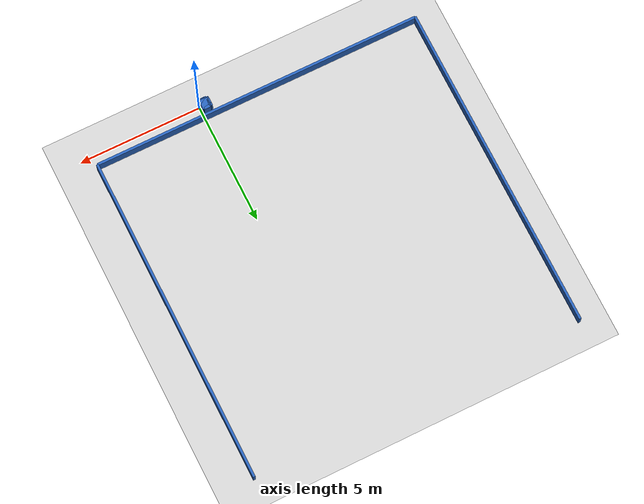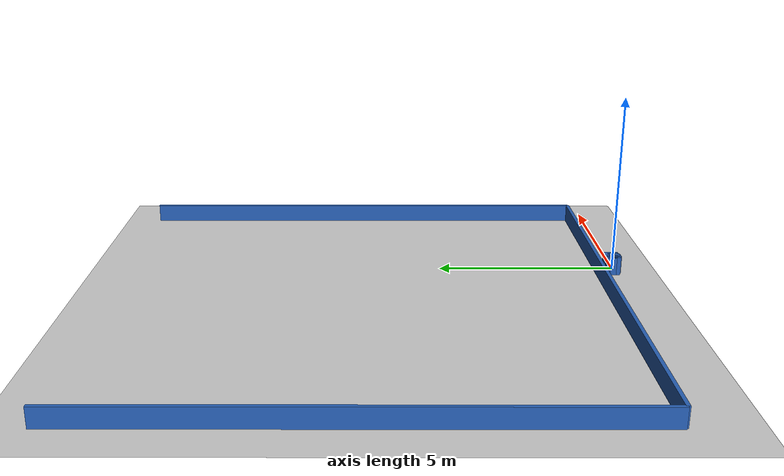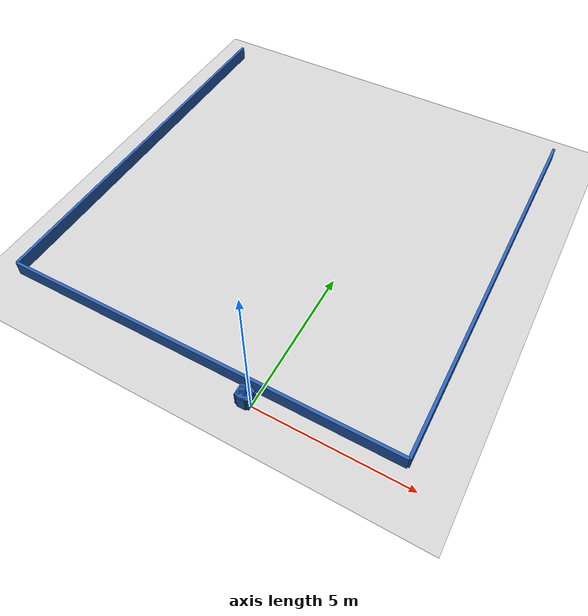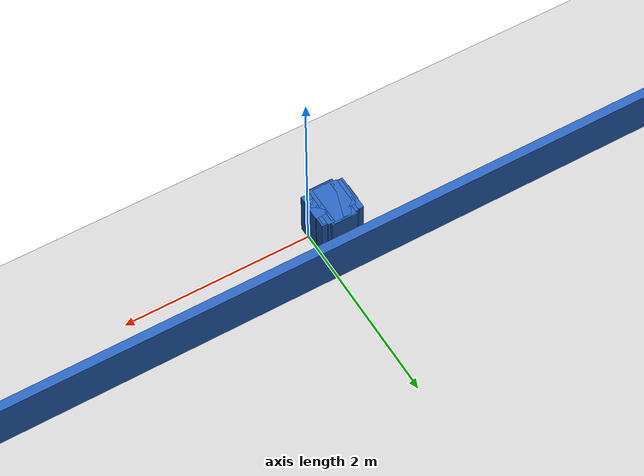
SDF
<?xml version="1.0" ?>
    <sdf version="1.5">
      <world name="default">
        <!-- A global light source -->
        <include>
          <uri>model://sun</uri>
        </include>
        <!-- A ground plane -->
        <include>
          <uri>model://ground_plane</uri>
        </include>

    <model name='libopen_space_final_T2B_55_44'>
      <static>1</static>
      <pose frame=''>-0.225000 0.075000 0.000000 0.000000 0.000000 0.000000</pose>
      <link name='link'>
        <inertial>
          <mass>1</mass>
          <inertia>
            <ixx>0.145833</ixx>
            <ixy>0</ixy>
            <ixz>0</ixz>
            <iyy>0.145833</iyy>
            <iyz>0</iyz>
            <izz>0.125</izz>
          </inertia>
        </inertial>
        <collision name='collision'>
          <geometry>
            <box>
              <size>0.34 0.42 1</size>
            </box>
          </geometry>
          <max_contacts>10</max_contacts>
          <surface>
            <contact>
              <ode/>
            </contact>
            <bounce/>
            <friction>
              <torsional>
                <ode/>
              </torsional>
              <ode/>
            </friction>
          </surface>
        </collision>
        <visual name='visual'>
          <geometry>
            <box>
              <size>0.34 0.42 1</size>
            </box>
          </geometry>
	    <material>
              <ambient>0.152000 0.379000 0.720000 1</ambient>
	      <diffuse>0.152000 0.379000 0.720000 1</diffuse>
          </material>
          <material>
            <script>
              <name>Gazebo/Grey</name>
              <uri>file://media/materials/scripts/gazebo.material</uri>
            </script>
          </material>
        </visual>
        <self_collide>0</self_collide>
        <kinematic>0</kinematic>
        <gravity>1</gravity>
      </link>
      <plugin name='libopen_space_final_T2B_55_44' filename='libopen_space_final_T2B_55_44.so'/>
    </model>

    <model name='libopen_space_final_T2B_140_77'>
      <static>1</static>
      <pose frame=''>-0.225000 0.075000 0.000000 0.000000 0.000000 0.000000</pose>
      <link name='link'>
        <inertial>
          <mass>1</mass>
          <inertia>
            <ixx>0.145833</ixx>
            <ixy>0</ixy>
            <ixz>0</ixz>
            <iyy>0.145833</iyy>
            <iyz>0</iyz>
            <izz>0.125</izz>
          </inertia>
        </inertial>
        <collision name='collision'>
          <geometry>
            <box>
              <size>0.46 0.40 1</size>
            </box>
          </geometry>
          <max_contacts>10</max_contacts>
          <surface>
            <contact>
              <ode/>
            </contact>
            <bounce/>
            <friction>
              <torsional>
                <ode/>
              </torsional>
              <ode/>
            </friction>
          </surface>
        </collision>
        <visual name='visual'>
          <geometry>
            <box>
              <size>0.46 0.40 1</size>
            </box>
          </geometry>
	    <material>
              <ambient>0.152000 0.379000 0.720000 1</ambient>
	      <diffuse>0.152000 0.379000 0.720000 1</diffuse>
          </material>
          <material>
            <script>
              <name>Gazebo/Grey</name>
              <uri>file://media/materials/scripts/gazebo.material</uri>
            </script>
          </material>
        </visual>
        <self_collide>0</self_collide>
        <kinematic>0</kinematic>
        <gravity>1</gravity>
      </link>
      <plugin name='libopen_space_final_T2B_140_77' filename='libopen_space_final_T2B_140_77.so'/>
    </model>

    <model name='libopen_space_final_T2B_112_54'>
      <static>1</static>
      <pose frame=''>-0.225000 0.075000 0.000000 0.000000 0.000000 0.000000</pose>
      <link name='link'>
        <inertial>
          <mass>1</mass>
          <inertia>
            <ixx>0.145833</ixx>
            <ixy>0</ixy>
            <ixz>0</ixz>
            <iyy>0.145833</iyy>
            <iyz>0</iyz>
            <izz>0.125</izz>
          </inertia>
        </inertial>
        <collision name='collision'>
          <geometry>
            <box>
              <size>0.19 0.43 1</size>
            </box>
          </geometry>
          <max_contacts>10</max_contacts>
          <surface>
            <contact>
              <ode/>
            </contact>
            <bounce/>
            <friction>
              <torsional>
                <ode/>
              </torsional>
              <ode/>
            </friction>
          </surface>
        </collision>
        <visual name='visual'>
          <geometry>
            <box>
              <size>0.19 0.43 1</size>
            </box>
          </geometry>
	    <material>
              <ambient>0.152000 0.379000 0.720000 1</ambient>
	      <diffuse>0.152000 0.379000 0.720000 1</diffuse>
          </material>
          <material>
            <script>
              <name>Gazebo/Grey</name>
              <uri>file://media/materials/scripts/gazebo.material</uri>
            </script>
          </material>
        </visual>
        <self_collide>0</self_collide>
        <kinematic>0</kinematic>
        <gravity>1</gravity>
      </link>
      <plugin name='libopen_space_final_T2B_112_54' filename='libopen_space_final_T2B_112_54.so'/>
    </model>

    <model name='libopen_space_final_T2B_85_62'>
      <static>1</static>
      <pose frame=''>-0.225000 0.075000 0.000000 0.000000 0.000000 0.000000</pose>
      <link name='link'>
        <inertial>
          <mass>1</mass>
          <inertia>
            <ixx>0.145833</ixx>
            <ixy>0</ixy>
            <ixz>0</ixz>
            <iyy>0.145833</iyy>
            <iyz>0</iyz>
            <izz>0.125</izz>
          </inertia>
        </inertial>
        <collision name='collision'>
          <geometry>
            <box>
              <size>0.24 0.37 1</size>
            </box>
          </geometry>
          <max_contacts>10</max_contacts>
          <surface>
            <contact>
              <ode/>
            </contact>
            <bounce/>
            <friction>
              <torsional>
                <ode/>
              </torsional>
              <ode/>
            </friction>
          </surface>
        </collision>
        <visual name='visual'>
          <geometry>
            <box>
              <size>0.24 0.37 1</size>
            </box>
          </geometry>
	    <material>
              <ambient>0.152000 0.379000 0.720000 1</ambient>
	      <diffuse>0.152000 0.379000 0.720000 1</diffuse>
          </material>
          <material>
            <script>
              <name>Gazebo/Grey</name>
              <uri>file://media/materials/scripts/gazebo.material</uri>
            </script>
          </material>
        </visual>
        <self_collide>0</self_collide>
        <kinematic>0</kinematic>
        <gravity>1</gravity>
      </link>
      <plugin name='libopen_space_final_T2B_85_62' filename='libopen_space_final_T2B_85_62.so'/>
    </model>

    <model name='libopen_space_final_T2B_112_81'>
      <static>1</static>
      <pose frame=''>-0.225000 0.075000 0.000000 0.000000 0.000000 0.000000</pose>
      <link name='link'>
        <inertial>
          <mass>1</mass>
          <inertia>
            <ixx>0.145833</ixx>
            <ixy>0</ixy>
            <ixz>0</ixz>
            <iyy>0.145833</iyy>
            <iyz>0</iyz>
            <izz>0.125</izz>
          </inertia>
        </inertial>
        <collision name='collision'>
          <geometry>
            <box>
              <size>0.27 0.45 1</size>
            </box>
          </geometry>
          <max_contacts>10</max_contacts>
          <surface>
            <contact>
              <ode/>
            </contact>
            <bounce/>
            <friction>
              <torsional>
                <ode/>
              </torsional>
              <ode/>
            </friction>
          </surface>
        </collision>
        <visual name='visual'>
          <geometry>
            <box>
              <size>0.27 0.45 1</size>
            </box>
          </geometry>
	    <material>
              <ambient>0.152000 0.379000 0.720000 1</ambient>
	      <diffuse>0.152000 0.379000 0.720000 1</diffuse>
          </material>
          <material>
            <script>
              <name>Gazebo/Grey</name>
              <uri>file://media/materials/scripts/gazebo.material</uri>
            </script>
          </material>
        </visual>
        <self_collide>0</self_collide>
        <kinematic>0</kinematic>
        <gravity>1</gravity>
      </link>
      <plugin name='libopen_space_final_T2B_112_81' filename='libopen_space_final_T2B_112_81.so'/>
    </model>

    <model name='libopen_space_final_T2B_103_35'>
      <static>1</static>
      <pose frame=''>-0.225000 0.075000 0.000000 0.000000 0.000000 0.000000</pose>
      <link name='link'>
        <inertial>
          <mass>1</mass>
          <inertia>
            <ixx>0.145833</ixx>
            <ixy>0</ixy>
            <ixz>0</ixz>
            <iyy>0.145833</iyy>
            <iyz>0</iyz>
            <izz>0.125</izz>
          </inertia>
        </inertial>
        <collision name='collision'>
          <geometry>
            <box>
              <size>0.47 0.18 1</size>
            </box>
          </geometry>
          <max_contacts>10</max_contacts>
          <surface>
            <contact>
              <ode/>
            </contact>
            <bounce/>
            <friction>
              <torsional>
                <ode/>
              </torsional>
              <ode/>
            </friction>
          </surface>
        </collision>
        <visual name='visual'>
          <geometry>
            <box>
              <size>0.47 0.18 1</size>
            </box>
          </geometry>
	    <material>
              <ambient>0.152000 0.379000 0.720000 1</ambient>
	      <diffuse>0.152000 0.379000 0.720000 1</diffuse>
          </material>
          <material>
            <script>
              <name>Gazebo/Grey</name>
              <uri>file://media/materials/scripts/gazebo.material</uri>
            </script>
          </material>
        </visual>
        <self_collide>0</self_collide>
        <kinematic>0</kinematic>
        <gravity>1</gravity>
      </link>
      <plugin name='libopen_space_final_T2B_103_35' filename='libopen_space_final_T2B_103_35.so'/>
    </model>

    <model name='libopen_space_final_T2B_118_50'>
      <static>1</static>
      <pose frame=''>-0.225000 0.075000 0.000000 0.000000 0.000000 0.000000</pose>
      <link name='link'>
        <inertial>
          <mass>1</mass>
          <inertia>
            <ixx>0.145833</ixx>
            <ixy>0</ixy>
            <ixz>0</ixz>
            <iyy>0.145833</iyy>
            <iyz>0</iyz>
            <izz>0.125</izz>
          </inertia>
        </inertial>
        <collision name='collision'>
          <geometry>
            <box>
              <size>0.28 0.48 1</size>
            </box>
          </geometry>
          <max_contacts>10</max_contacts>
          <surface>
            <contact>
              <ode/>
            </contact>
            <bounce/>
            <friction>
              <torsional>
                <ode/>
              </torsional>
              <ode/>
            </friction>
          </surface>
        </collision>
        <visual name='visual'>
          <geometry>
            <box>
              <size>0.28 0.48 1</size>
            </box>
          </geometry>
	    <material>
              <ambient>0.152000 0.379000 0.720000 1</ambient>
	      <diffuse>0.152000 0.379000 0.720000 1</diffuse>
          </material>
          <material>
            <script>
              <name>Gazebo/Grey</name>
              <uri>file://media/materials/scripts/gazebo.material</uri>
            </script>
          </material>
        </visual>
        <self_collide>0</self_collide>
        <kinematic>0</kinematic>
        <gravity>1</gravity>
      </link>
      <plugin name='libopen_space_final_T2B_118_50' filename='libopen_space_final_T2B_118_50.so'/>
    </model>

    <model name='libopen_space_final_T2B_51_1'>
      <static>1</static>
      <pose frame=''>-0.225000 0.075000 0.000000 0.000000 0.000000 0.000000</pose>
      <link name='link'>
        <inertial>
          <mass>1</mass>
          <inertia>
            <ixx>0.145833</ixx>
            <ixy>0</ixy>
            <ixz>0</ixz>
            <iyy>0.145833</iyy>
            <iyz>0</iyz>
            <izz>0.125</izz>
          </inertia>
        </inertial>
        <collision name='collision'>
          <geometry>
            <box>
              <size>0.28 0.39 1</size>
            </box>
          </geometry>
          <max_contacts>10</max_contacts>
          <surface>
            <contact>
              <ode/>
            </contact>
            <bounce/>
            <friction>
              <torsional>
                <ode/>
              </torsional>
              <ode/>
            </friction>
          </surface>
        </collision>
        <visual name='visual'>
          <geometry>
            <box>
              <size>0.28 0.39 1</size>
            </box>
          </geometry>
	    <material>
              <ambient>0.152000 0.379000 0.720000 1</ambient>
	      <diffuse>0.152000 0.379000 0.720000 1</diffuse>
          </material>
          <material>
            <script>
              <name>Gazebo/Grey</name>
              <uri>file://media/materials/scripts/gazebo.material</uri>
            </script>
          </material>
        </visual>
        <self_collide>0</self_collide>
        <kinematic>0</kinematic>
        <gravity>1</gravity>
      </link>
      <plugin name='libopen_space_final_T2B_51_1' filename='libopen_space_final_T2B_51_1.so'/>
    </model>

    <model name='libopen_space_final_T2B_115_72'>
      <static>1</static>
      <pose frame=''>-0.225000 0.075000 0.000000 0.000000 0.000000 0.000000</pose>
      <link name='link'>
        <inertial>
          <mass>1</mass>
          <inertia>
            <ixx>0.145833</ixx>
            <ixy>0</ixy>
            <ixz>0</ixz>
            <iyy>0.145833</iyy>
            <iyz>0</iyz>
            <izz>0.125</izz>
          </inertia>
        </inertial>
        <collision name='collision'>
          <geometry>
            <box>
              <size>0.42 0.37 1</size>
            </box>
          </geometry>
          <max_contacts>10</max_contacts>
          <surface>
            <contact>
              <ode/>
            </contact>
            <bounce/>
            <friction>
              <torsional>
                <ode/>
              </torsional>
              <ode/>
            </friction>
          </surface>
        </collision>
        <visual name='visual'>
          <geometry>
            <box>
              <size>0.42 0.37 1</size>
            </box>
          </geometry>
	    <material>
              <ambient>0.152000 0.379000 0.720000 1</ambient>
	      <diffuse>0.152000 0.379000 0.720000 1</diffuse>
          </material>
          <material>
            <script>
              <name>Gazebo/Grey</name>
              <uri>file://media/materials/scripts/gazebo.material</uri>
            </script>
          </material>
        </visual>
        <self_collide>0</self_collide>
        <kinematic>0</kinematic>
        <gravity>1</gravity>
      </link>
      <plugin name='libopen_space_final_T2B_115_72' filename='libopen_space_final_T2B_115_72.so'/>
    </model>

    <model name='libopen_space_final_T2B_134_25'>
      <static>1</static>
      <pose frame=''>-0.225000 0.075000 0.000000 0.000000 0.000000 0.000000</pose>
      <link name='link'>
        <inertial>
          <mass>1</mass>
          <inertia>
            <ixx>0.145833</ixx>
            <ixy>0</ixy>
            <ixz>0</ixz>
            <iyy>0.145833</iyy>
            <iyz>0</iyz>
            <izz>0.125</izz>
          </inertia>
        </inertial>
        <collision name='collision'>
          <geometry>
            <box>
              <size>0.23 0.47 1</size>
            </box>
          </geometry>
          <max_contacts>10</max_contacts>
          <surface>
            <contact>
              <ode/>
            </contact>
            <bounce/>
            <friction>
              <torsional>
                <ode/>
              </torsional>
              <ode/>
            </friction>
          </surface>
        </collision>
        <visual name='visual'>
          <geometry>
            <box>
              <size>0.23 0.47 1</size>
            </box>
          </geometry>
	    <material>
              <ambient>0.152000 0.379000 0.720000 1</ambient>
	      <diffuse>0.152000 0.379000 0.720000 1</diffuse>
          </material>
          <material>
            <script>
              <name>Gazebo/Grey</name>
              <uri>file://media/materials/scripts/gazebo.material</uri>
            </script>
          </material>
        </visual>
        <self_collide>0</self_collide>
        <kinematic>0</kinematic>
        <gravity>1</gravity>
      </link>
      <plugin name='libopen_space_final_T2B_134_25' filename='libopen_space_final_T2B_134_25.so'/>
    </model>

    <model name='libopen_space_final_T2B_116_74'>
      <static>1</static>
      <pose frame=''>-0.225000 0.075000 0.000000 0.000000 0.000000 0.000000</pose>
      <link name='link'>
        <inertial>
          <mass>1</mass>
          <inertia>
            <ixx>0.145833</ixx>
            <ixy>0</ixy>
            <ixz>0</ixz>
            <iyy>0.145833</iyy>
            <iyz>0</iyz>
            <izz>0.125</izz>
          </inertia>
        </inertial>
        <collision name='collision'>
          <geometry>
            <box>
              <size>0.38 0.26 1</size>
            </box>
          </geometry>
          <max_contacts>10</max_contacts>
          <surface>
            <contact>
              <ode/>
            </contact>
            <bounce/>
            <friction>
              <torsional>
                <ode/>
              </torsional>
              <ode/>
            </friction>
          </surface>
        </collision>
        <visual name='visual'>
          <geometry>
            <box>
              <size>0.38 0.26 1</size>
            </box>
          </geometry>
	    <material>
              <ambient>0.152000 0.379000 0.720000 1</ambient>
	      <diffuse>0.152000 0.379000 0.720000 1</diffuse>
          </material>
          <material>
            <script>
              <name>Gazebo/Grey</name>
              <uri>file://media/materials/scripts/gazebo.material</uri>
            </script>
          </material>
        </visual>
        <self_collide>0</self_collide>
        <kinematic>0</kinematic>
        <gravity>1</gravity>
      </link>
      <plugin name='libopen_space_final_T2B_116_74' filename='libopen_space_final_T2B_116_74.so'/>
    </model>

        <model name='bottom_wall'>
          <static>1</static>
          <pose frame=''>-2.25 0.5 0.000000 0.000000 0.000000 1.57079632</pose>
          <link name='link'>
            <inertial>
            <mass>1</mass>
            <inertia>
              <ixx>0.145833</ixx>
              <ixy>0</ixy>
              <ixz>0</ixz>
              <iyy>0.145833</iyy>
              <iyz>0</iyz>
              <izz>0.125</izz>
            </inertia>
            </inertial>
            <collision name='collision'>
            <geometry>
              <box>
              <size>0.1 13.5 1</size>
              </box>
            </geometry>
            <max_contacts>10</max_contacts>
            <surface>
              <contact>
              <ode/>
              </contact>
              <bounce/>
              <friction>
              <torsional>
                <ode/>
              </torsional>
              <ode/>
              </friction>
            </surface>
            </collision>
            <visual name='visual'>
            <geometry>
              <box>
              <size>0.1 13.5 1</size>
              </box>
            </geometry>
            <material>
              <ambient>0.152000 0.379000 0.720000 1</ambient>
            <diffuse>0.152000 0.379000 0.720000 1</diffuse>
            </material>
            <material>
              <script>
              <name>Gazebo/Grey</name>
              <uri>file://media/materials/scripts/gazebo.material</uri>
              </script>
            </material>
            </visual>
            <self_collide>0</self_collide>
            <kinematic>0</kinematic>
            <gravity>1</gravity>
          </link>
        </model>

        <model name='left_wall'>
          <static>1</static>
          <pose frame=''>-9 7.25 0.000000 0.000000 0.000000 0.000000</pose>
          <link name='link'>
            <inertial>
            <mass>1</mass>
            <inertia>
              <ixx>0.145833</ixx>
              <ixy>0</ixy>
              <ixz>0</ixz>
              <iyy>0.145833</iyy>
              <iyz>0</iyz>
              <izz>0.125</izz>
            </inertia>
            </inertial>
            <collision name='collision'>
            <geometry>
              <box>
              <size>0.1 13.5 1</size>
              </box>
            </geometry>
            <max_contacts>10</max_contacts>
            <surface>
              <contact>
              <ode/>
              </contact>
              <bounce/>
              <friction>
              <torsional>
                <ode/>
              </torsional>
              <ode/>
              </friction>
            </surface>
            </collision>
            <visual name='visual'>
            <geometry>
              <box>
              <size>0.1 13.5 1</size>
              </box>
            </geometry>
            <material>
              <ambient>0.152000 0.379000 0.720000 1</ambient>
            <diffuse>0.152000 0.379000 0.720000 1</diffuse>
            </material>
            <material>
              <script>
              <name>Gazebo/Grey</name>
              <uri>file://media/materials/scripts/gazebo.material</uri>
              </script>
            </material>
            </visual>
            <self_collide>0</self_collide>
            <kinematic>0</kinematic>
            <gravity>1</gravity>
          </link>
        </model>

        <model name='right_wall'>
          <static>1</static>
          <pose frame=''>4.5 7.25 0.000000 0.000000 0.000000 0.000000</pose>
          <link name='link'>
            <inertial>
            <mass>1</mass>
            <inertia>
              <ixx>0.145833</ixx>
              <ixy>0</ixy>
              <ixz>0</ixz>
              <iyy>0.145833</iyy>
              <iyz>0</iyz>
              <izz>0.125</izz>
            </inertia>
            </inertial>
            <collision name='collision'>
            <geometry>
              <box>
              <size>0.1 13.5 1</size>
              </box>
            </geometry>
            <max_contacts>10</max_contacts>
            <surface>
              <contact>
              <ode/>
              </contact>
              <bounce/>
              <friction>
              <torsional>
                <ode/>
              </torsional>
              <ode/>
              </friction>
            </surface>
            </collision>
            <visual name='visual'>
            <geometry>
              <box>
              <size>0.1 13.5 1</size>
              </box>
            </geometry>
            <material>
              <ambient>0.152000 0.379000 0.720000 1</ambient>
            <diffuse>0.152000 0.379000 0.720000 1</diffuse>
            </material>
            <material>
              <script>
              <name>Gazebo/Grey</name>
              <uri>file://media/materials/scripts/gazebo.material</uri>
              </script>
            </material>
            </visual>
            <self_collide>0</self_collide>
            <kinematic>0</kinematic>
            <gravity>1</gravity>
          </link>
        </model>

      </world>
    </sdf>"
